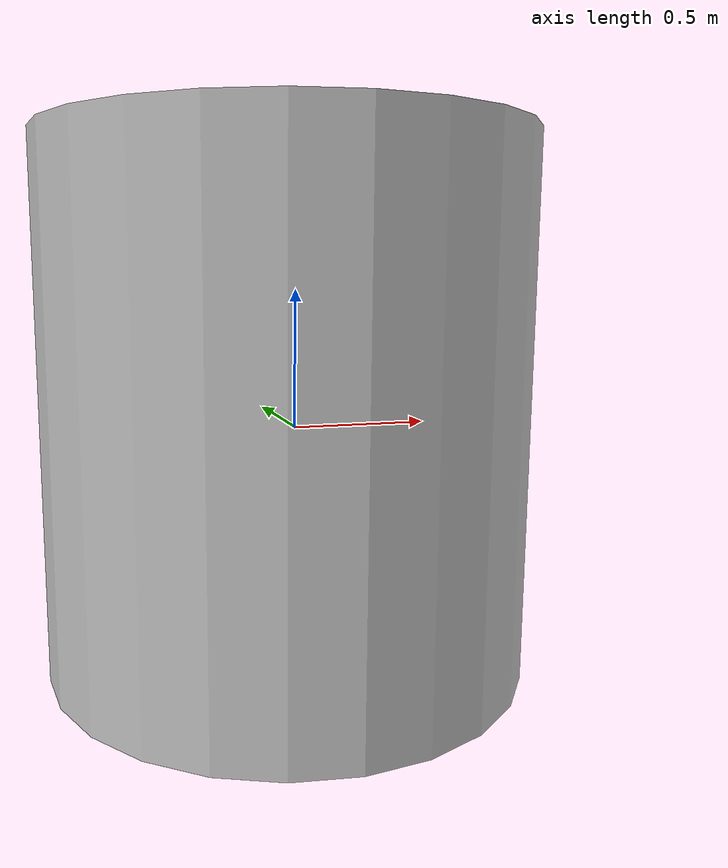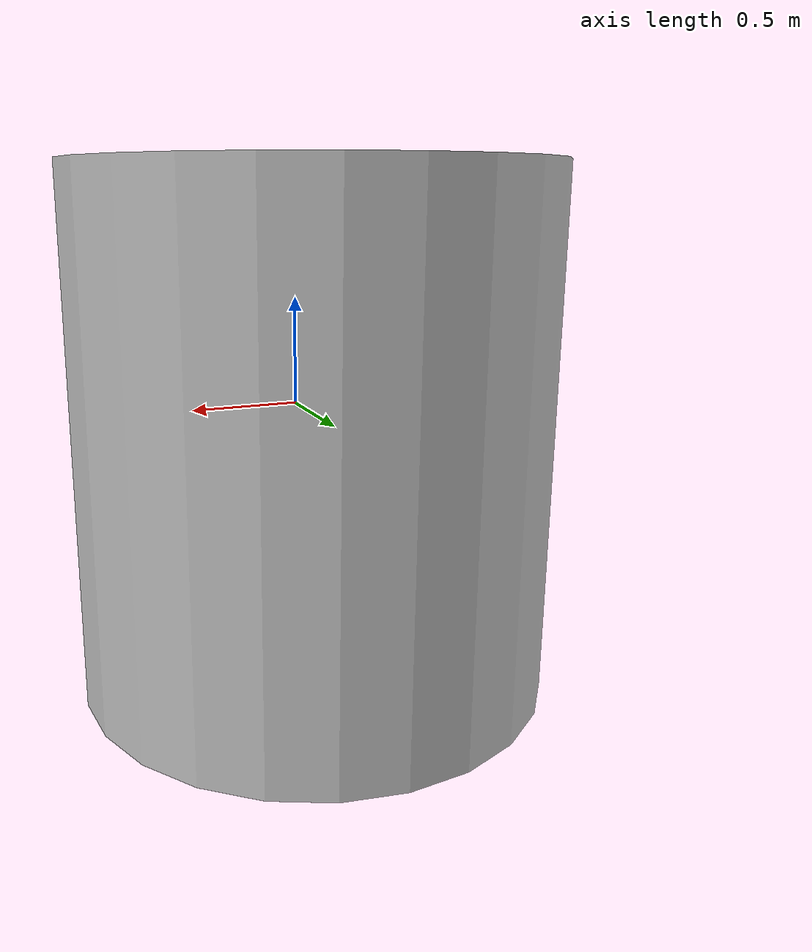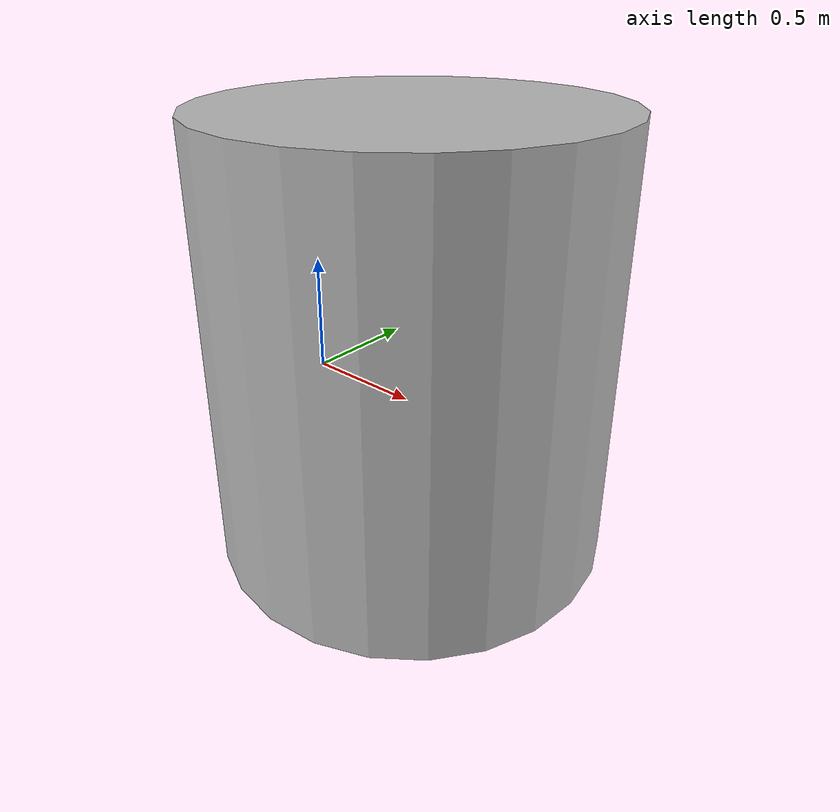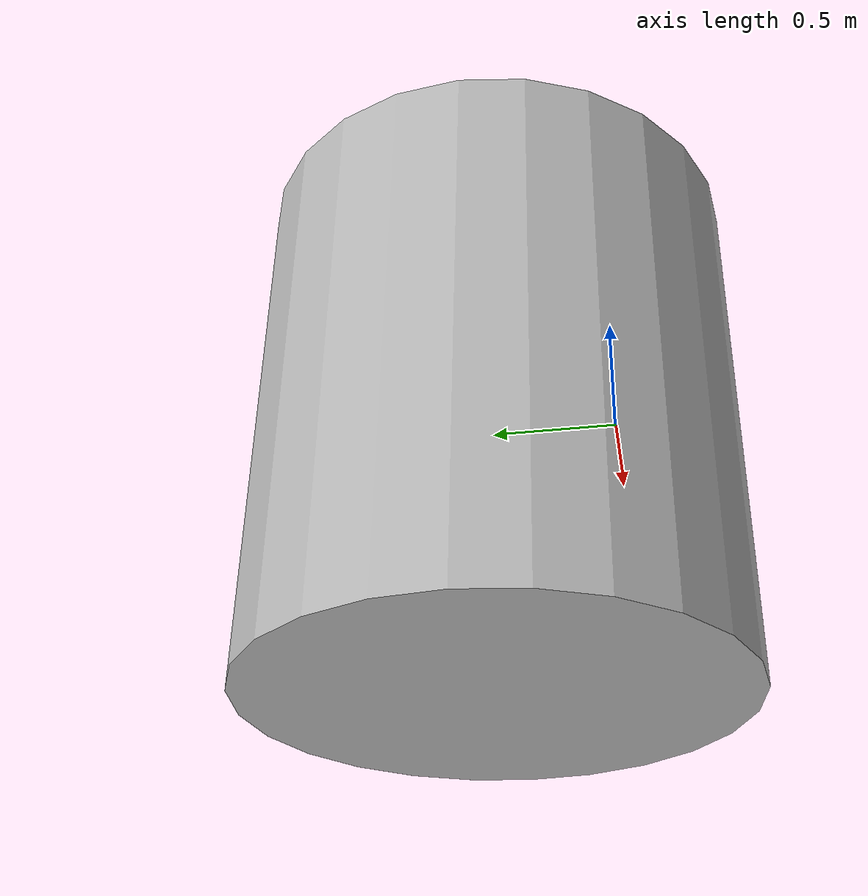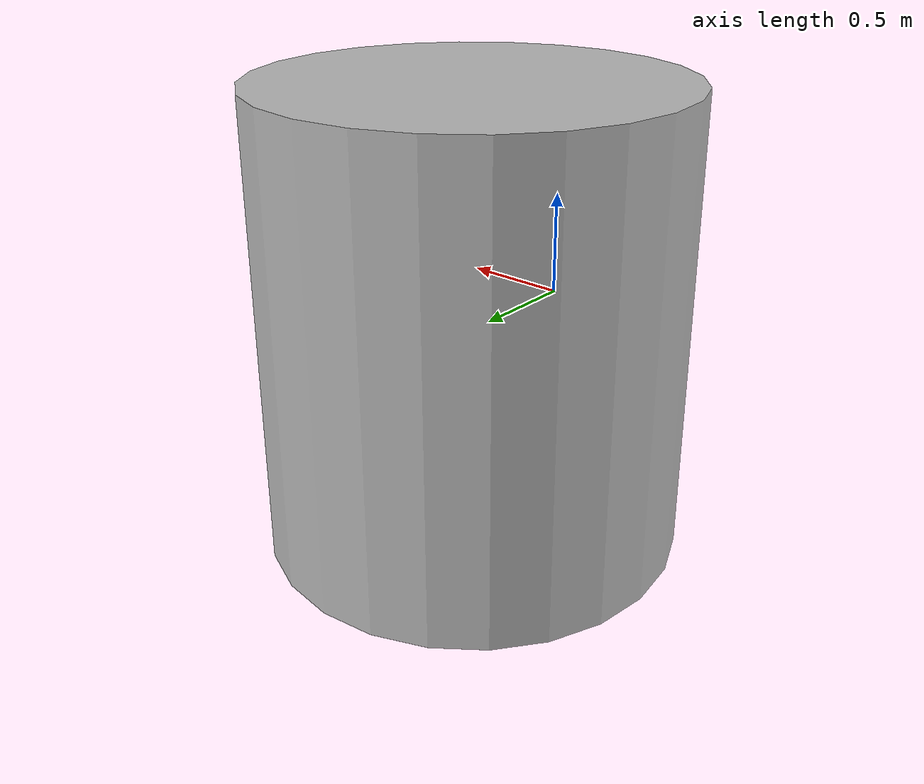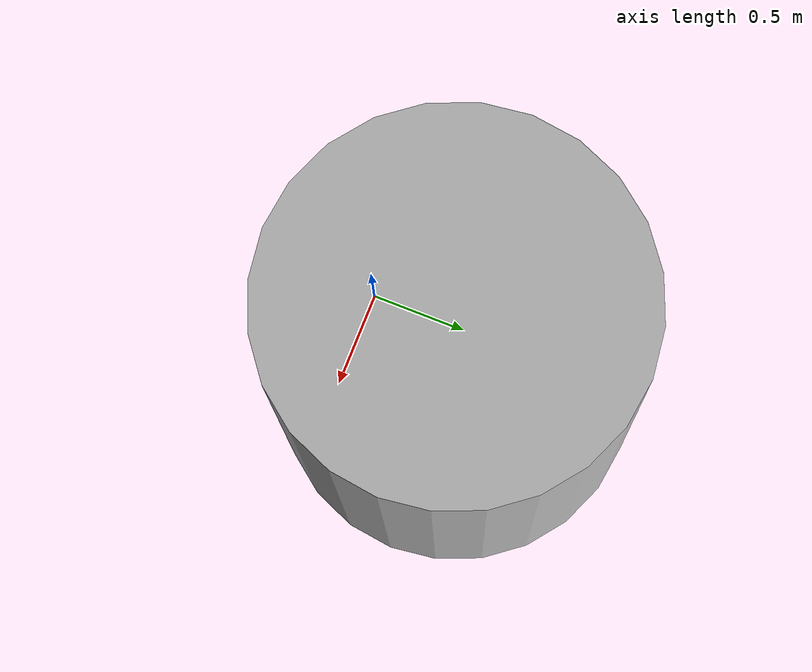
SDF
<?xml version='1.0'?>
<sdf version='1.4'>
	<model name="cylinder">
		<static>true</static>
		<link name="left_wheel">
			<pose>0.1 0.5 0 0 0 0</pose>
			<collision name="collision">
			<geometry>
				<cylinder>
				<radius>1</radius>
				<length>2.2</length>
				</cylinder>
			</geometry>
			</collision>
			<visual name="visual">
			<geometry>
				<cylinder>
				<radius>1</radius>
				<length>2.2</length>
				</cylinder>
			</geometry>
			</visual>
		</link>
	</model>
</sdf>
